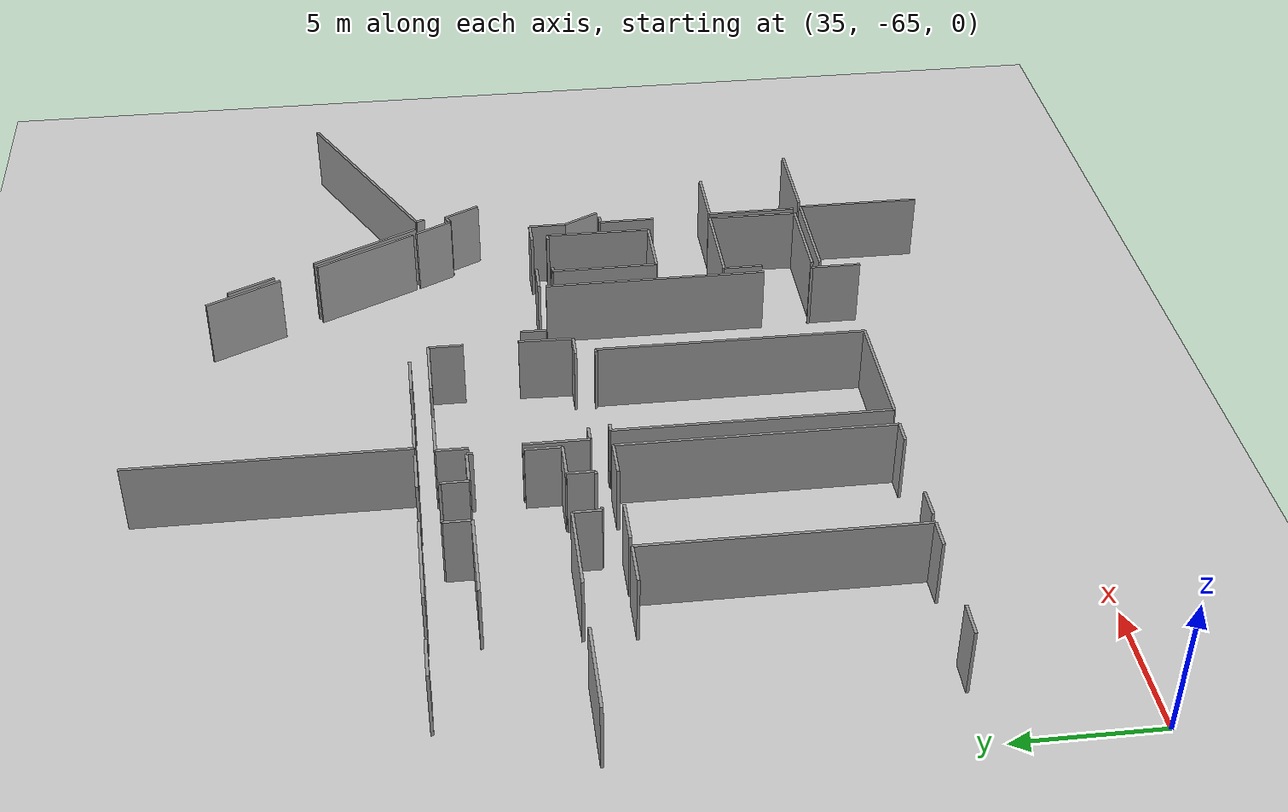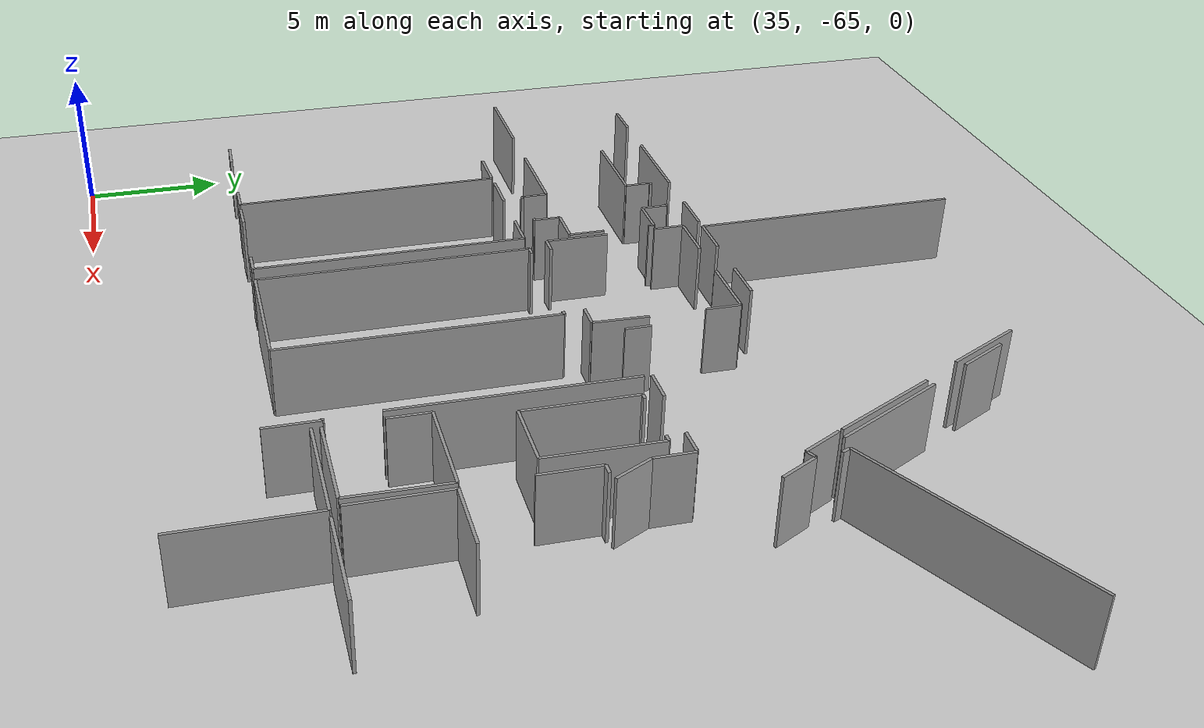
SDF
<sdf version="1.6">
 <world name="default">
  <model name="ground_plane">
   <static>1</static>
   <link name="link">
    <collision name="collision">
     <geometry><plane><normal>0 0 1</normal><size>100 100</size></plane></geometry>
     <surface><friction><ode><mu>100</mu><mu2>50</mu2></ode></friction></surface>
    </collision>
    <visual name="visual">
     <cast_shadows>0</cast_shadows>
     <geometry><plane><normal>0 0 1</normal><size>100 100</size></plane></geometry>
     <material>
      <script><uri>file://media/materials/scripts/gazebo.material</uri><name>Gazebo/Grey</name></script>
     </material>
    </visual>
   </link>
  </model>
  <model name="0510045922_A-40">
   <static>1</static>
   <link name="Wall_1541">
    <collision name="Wall_1541_Collision">
     <geometry><box><size>1.59140878185 0.1 2.5</size></box></geometry>
     <pose>0.795704390926 0 1.25 0 0 0</pose>
    </collision>
    <visual name="Wall_1541_Visual">
     <pose>0.795704390926 0 1.25 0 0 0</pose>
     <geometry><box><size>1.59140878185 0.1 2.5</size></box></geometry>
     <material>
      <script><uri>file://media/materials/scripts/gazebo.material</uri><name>Gazebo/Grey</name></script>
      <ambient>1 1 1 1</ambient>
     </material>
    </visual>
    <pose>174.724331194 -150.991523162 0 0 0 0.0</pose>
   </link>
   <link name="Wall_1542">
    <collision name="Wall_1542_Collision">
     <geometry><box><size>9.60462604054 0.1 2.5</size></box></geometry>
     <pose>4.80231302027 0 1.25 0 0 0</pose>
    </collision>
    <visual name="Wall_1542_Visual">
     <pose>4.80231302027 0 1.25 0 0 0</pose>
     <geometry><box><size>9.60462604054 0.1 2.5</size></box></geometry>
     <material>
      <script><uri>file://media/materials/scripts/gazebo.material</uri><name>Gazebo/Grey</name></script>
      <ambient>1 1 1 1</ambient>
     </material>
    </visual>
    <pose>176.315739976 -150.991523162 0 0 0 -1.57079632679</pose>
   </link>
   <link name="Wall_1543">
    <collision name="Wall_1543_Collision">
     <geometry><box><size>1.04823028531 0.1 2.5</size></box></geometry>
     <pose>0.524115142657 0 1.25 0 0 0</pose>
    </collision>
    <visual name="Wall_1543_Visual">
     <pose>0.524115142657 0 1.25 0 0 0</pose>
     <geometry><box><size>1.04823028531 0.1 2.5</size></box></geometry>
     <material>
      <script><uri>file://media/materials/scripts/gazebo.material</uri><name>Gazebo/Grey</name></script>
      <ambient>1 1 1 1</ambient>
     </material>
    </visual>
    <pose>176.315739976 -160.596149203 0 0 0 3.14159265359</pose>
   </link>
   <link name="Wall_1544">
    <collision name="Wall_1544_Collision">
     <geometry><box><size>1.21402220186 0.1 2.5</size></box></geometry>
     <pose>0.607011100928 0 1.25 0 0 0</pose>
    </collision>
    <visual name="Wall_1544_Visual">
     <pose>0.607011100928 0 1.25 0 0 0</pose>
     <geometry><box><size>1.21402220186 0.1 2.5</size></box></geometry>
     <material>
      <script><uri>file://media/materials/scripts/gazebo.material</uri><name>Gazebo/Grey</name></script>
      <ambient>1 1 1 1</ambient>
     </material>
    </visual>
    <pose>172.524420156 -160.596149203 0 0 0 3.11856007816</pose>
   </link>
   <link name="Wall_1546">
    <collision name="Wall_1546_Collision">
     <geometry><box><size>1.57387049628 0.1 2.5</size></box></geometry>
     <pose>0.786935248141 0 1.25 0 0 0</pose>
    </collision>
    <visual name="Wall_1546_Visual">
     <pose>0.786935248141 0 1.25 0 0 0</pose>
     <geometry><box><size>1.57387049628 0.1 2.5</size></box></geometry>
     <material>
      <script><uri>file://media/materials/scripts/gazebo.material</uri><name>Gazebo/Grey</name></script>
      <ambient>1 1 1 1</ambient>
     </material>
    </visual>
    <pose>176.722170681 -150.982372752 0 0 0 0.0</pose>
   </link>
   <link name="Wall_1547">
    <collision name="Wall_1547_Collision">
     <geometry><box><size>1.37993264282 0.1 2.5</size></box></geometry>
     <pose>0.689966321408 0 1.25 0 0 0</pose>
    </collision>
    <visual name="Wall_1547_Visual">
     <pose>0.689966321408 0 1.25 0 0 0</pose>
     <geometry><box><size>1.37993264282 0.1 2.5</size></box></geometry>
     <material>
      <script><uri>file://media/materials/scripts/gazebo.material</uri><name>Gazebo/Grey</name></script>
      <ambient>1 1 1 1</ambient>
     </material>
    </visual>
    <pose>179.964465908 -150.982372752 0 0 0 0.0</pose>
   </link>
   <link name="Wall_1548">
    <collision name="Wall_1548_Collision">
     <geometry><box><size>9.62241850416 0.1 2.5</size></box></geometry>
     <pose>4.81120925208 0 1.25 0 0 0</pose>
    </collision>
    <visual name="Wall_1548_Visual">
     <pose>4.81120925208 0 1.25 0 0 0</pose>
     <geometry><box><size>9.62241850416 0.1 2.5</size></box></geometry>
     <material>
      <script><uri>file://media/materials/scripts/gazebo.material</uri><name>Gazebo/Grey</name></script>
      <ambient>1 1 1 1</ambient>
     </material>
    </visual>
    <pose>181.344398551 -150.982372752 0 0 0 -1.57079632679</pose>
   </link>
   <link name="Wall_1549">
    <collision name="Wall_1549_Collision">
     <geometry><box><size>0.846158734193 0.1 2.5</size></box></geometry>
     <pose>0.423079367097 0 1.25 0 0 0</pose>
    </collision>
    <visual name="Wall_1549_Visual">
     <pose>0.423079367097 0 1.25 0 0 0</pose>
     <geometry><box><size>0.846158734193 0.1 2.5</size></box></geometry>
     <material>
      <script><uri>file://media/materials/scripts/gazebo.material</uri><name>Gazebo/Grey</name></script>
      <ambient>1 1 1 1</ambient>
     </material>
    </visual>
    <pose>181.344398551 -160.604791256 0 0 0 3.14159265359</pose>
   </link>
   <link name="Wall_1550">
    <collision name="Wall_1550_Collision">
     <geometry><box><size>1.07378720545 0.1 2.5</size></box></geometry>
     <pose>0.536893602723 0 1.25 0 0 0</pose>
    </collision>
    <visual name="Wall_1550_Visual">
     <pose>0.536893602723 0 1.25 0 0 0</pose>
     <geometry><box><size>1.07378720545 0.1 2.5</size></box></geometry>
     <material>
      <script><uri>file://media/materials/scripts/gazebo.material</uri><name>Gazebo/Grey</name></script>
      <ambient>1 1 1 1</ambient>
     </material>
    </visual>
    <pose>177.795818771 -160.604791256 0 0 0 -3.12549555923</pose>
   </link>
   <link name="Wall_1556">
    <collision name="Wall_1556_Collision">
     <geometry><box><size>1.64681959713 0.1 2.5</size></box></geometry>
     <pose>0.823409798564 0 1.25 0 0 0</pose>
    </collision>
    <visual name="Wall_1556_Visual">
     <pose>0.823409798564 0 1.25 0 0 0</pose>
     <geometry><box><size>1.64681959713 0.1 2.5</size></box></geometry>
     <material>
      <script><uri>file://media/materials/scripts/gazebo.material</uri><name>Gazebo/Grey</name></script>
      <ambient>1 1 1 1</ambient>
     </material>
    </visual>
    <pose>181.570871195 -144.469822711 0 0 0 3.14159265359</pose>
   </link>
   <link name="Wall_1557">
    <collision name="Wall_1557_Collision">
     <geometry><box><size>3.50969053822 0.1 2.5</size></box></geometry>
     <pose>1.75484526911 0 1.25 0 0 0</pose>
    </collision>
    <visual name="Wall_1557_Visual">
     <pose>1.75484526911 0 1.25 0 0 0</pose>
     <geometry><box><size>3.50969053822 0.1 2.5</size></box></geometry>
     <material>
      <script><uri>file://media/materials/scripts/gazebo.material</uri><name>Gazebo/Grey</name></script>
      <ambient>1 1 1 1</ambient>
     </material>
    </visual>
    <pose>178.248255703 -144.469822711 0 0 0 3.14159265359</pose>
   </link>
   <link name="Wall_1558">
    <collision name="Wall_1558_Collision">
     <geometry><box><size>1.48719945147 0.1 2.5</size></box></geometry>
     <pose>0.743599725737 0 1.25 0 0 0</pose>
    </collision>
    <visual name="Wall_1558_Visual">
     <pose>0.743599725737 0 1.25 0 0 0</pose>
     <geometry><box><size>1.48719945147 0.1 2.5</size></box></geometry>
     <material>
      <script><uri>file://media/materials/scripts/gazebo.material</uri><name>Gazebo/Grey</name></script>
      <ambient>1 1 1 1</ambient>
     </material>
    </visual>
    <pose>172.945847366 -144.469822711 0 0 0 -3.13937081483</pose>
   </link>
   <link name="Wall_1635">
    <collision name="Wall_1635_Collision">
     <geometry><box><size>3.24966639131 0.1 2.5</size></box></geometry>
     <pose>1.62483319565 0 1.25 0 0 0</pose>
    </collision>
    <visual name="Wall_1635_Visual">
     <pose>1.62483319565 0 1.25 0 0 0</pose>
     <geometry><box><size>3.24966639131 0.1 2.5</size></box></geometry>
     <material>
      <script><uri>file://media/materials/scripts/gazebo.material</uri><name>Gazebo/Grey</name></script>
      <ambient>1 1 1 1</ambient>
     </material>
    </visual>
    <pose>174.873279532 -146.15807333 0 0 0 0.0</pose>
   </link>
   <link name="Wall_1636">
    <collision name="Wall_1636_Collision">
     <geometry><box><size>0.954184406177 0.1 2.5</size></box></geometry>
     <pose>0.477092203088 0 1.25 0 0 0</pose>
    </collision>
    <visual name="Wall_1636_Visual">
     <pose>0.477092203088 0 1.25 0 0 0</pose>
     <geometry><box><size>0.954184406177 0.1 2.5</size></box></geometry>
     <material>
      <script><uri>file://media/materials/scripts/gazebo.material</uri><name>Gazebo/Grey</name></script>
      <ambient>1 1 1 1</ambient>
     </material>
    </visual>
    <pose>178.122945924 -146.15807333 0 0 0 1.57079632679</pose>
   </link>
   <link name="Wall_1637">
    <collision name="Wall_1637_Collision">
     <geometry><box><size>0.106500603673 0.1 2.5</size></box></geometry>
     <pose>0.0532503018364 0 1.25 0 0 0</pose>
    </collision>
    <visual name="Wall_1637_Visual">
     <pose>0.0532503018364 0 1.25 0 0 0</pose>
     <geometry><box><size>0.106500603673 0.1 2.5</size></box></geometry>
     <material>
      <script><uri>file://media/materials/scripts/gazebo.material</uri><name>Gazebo/Grey</name></script>
      <ambient>1 1 1 1</ambient>
     </material>
    </visual>
    <pose>178.122945924 -145.203888924 0 0 0 0.0</pose>
   </link>
   <link name="Wall_1638">
    <collision name="Wall_1638_Collision">
     <geometry><box><size>0.106754781725 0.1 2.5</size></box></geometry>
     <pose>0.0533773908623 0 1.25 0 0 0</pose>
    </collision>
    <visual name="Wall_1638_Visual">
     <pose>0.0533773908623 0 1.25 0 0 0</pose>
     <geometry><box><size>0.106754781725 0.1 2.5</size></box></geometry>
     <material>
      <script><uri>file://media/materials/scripts/gazebo.material</uri><name>Gazebo/Grey</name></script>
      <ambient>1 1 1 1</ambient>
     </material>
    </visual>
    <pose>179.951502828 -145.203888924 0 0 0 0.0</pose>
   </link>
   <link name="Wall_1639">
    <collision name="Wall_1639_Collision">
     <geometry><box><size>0.950117557349 0.1 2.5</size></box></geometry>
     <pose>0.475058778674 0 1.25 0 0 0</pose>
    </collision>
    <visual name="Wall_1639_Visual">
     <pose>0.475058778674 0 1.25 0 0 0</pose>
     <geometry><box><size>0.950117557349 0.1 2.5</size></box></geometry>
     <material>
      <script><uri>file://media/materials/scripts/gazebo.material</uri><name>Gazebo/Grey</name></script>
      <ambient>1 1 1 1</ambient>
     </material>
    </visual>
    <pose>180.058257609 -145.203888924 0 0 0 -1.57079632679</pose>
   </link>
   <link name="Wall_1640">
    <collision name="Wall_1640_Collision">
     <geometry><box><size>1.39696257228 0.1 2.5</size></box></geometry>
     <pose>0.698481286141 0 1.25 0 0 0</pose>
    </collision>
    <visual name="Wall_1640_Visual">
     <pose>0.698481286141 0 1.25 0 0 0</pose>
     <geometry><box><size>1.39696257228 0.1 2.5</size></box></geometry>
     <material>
      <script><uri>file://media/materials/scripts/gazebo.material</uri><name>Gazebo/Grey</name></script>
      <ambient>1 1 1 1</ambient>
     </material>
    </visual>
    <pose>180.058257609 -146.154006482 0 0 0 0.0</pose>
   </link>
   <link name="Wall_1641">
    <collision name="Wall_1641_Collision">
     <geometry><box><size>0.209442714622 0.1 2.5</size></box></geometry>
     <pose>0.104721357311 0 1.25 0 0 0</pose>
    </collision>
    <visual name="Wall_1641_Visual">
     <pose>0.104721357311 0 1.25 0 0 0</pose>
     <geometry><box><size>0.209442714622 0.1 2.5</size></box></geometry>
     <material>
      <script><uri>file://media/materials/scripts/gazebo.material</uri><name>Gazebo/Grey</name></script>
      <ambient>1 1 1 1</ambient>
     </material>
    </visual>
    <pose>181.455220182 -146.154006482 0 0 0 -1.57079632679</pose>
   </link>
   <link name="Wall_1642">
    <collision name="Wall_1642_Collision">
     <geometry><box><size>1.26911101226 0.1 2.5</size></box></geometry>
     <pose>0.634555506132 0 1.25 0 0 0</pose>
    </collision>
    <visual name="Wall_1642_Visual">
     <pose>0.634555506132 0 1.25 0 0 0</pose>
     <geometry><box><size>1.26911101226 0.1 2.5</size></box></geometry>
     <material>
      <script><uri>file://media/materials/scripts/gazebo.material</uri><name>Gazebo/Grey</name></script>
      <ambient>1 1 1 1</ambient>
     </material>
    </visual>
    <pose>181.455220182 -148.043820296 0 0 0 -1.57079632679</pose>
   </link>
   <link name="Wall_1643">
    <collision name="Wall_1643_Collision">
     <geometry><box><size>1.38450784775 0.1 2.5</size></box></geometry>
     <pose>0.692253923874 0 1.25 0 0 0</pose>
    </collision>
    <visual name="Wall_1643_Visual">
     <pose>0.692253923874 0 1.25 0 0 0</pose>
     <geometry><box><size>1.38450784775 0.1 2.5</size></box></geometry>
     <material>
      <script><uri>file://media/materials/scripts/gazebo.material</uri><name>Gazebo/Grey</name></script>
      <ambient>1 1 1 1</ambient>
     </material>
    </visual>
    <pose>181.455220182 -149.312931308 0 0 0 3.14159265359</pose>
   </link>
   <link name="Wall_1644">
    <collision name="Wall_1644_Collision">
     <geometry><box><size>0.948084132935 0.1 2.5</size></box></geometry>
     <pose>0.474042066468 0 1.25 0 0 0</pose>
    </collision>
    <visual name="Wall_1644_Visual">
     <pose>0.474042066468 0 1.25 0 0 0</pose>
     <geometry><box><size>0.948084132935 0.1 2.5</size></box></geometry>
     <material>
      <script><uri>file://media/materials/scripts/gazebo.material</uri><name>Gazebo/Grey</name></script>
      <ambient>1 1 1 1</ambient>
     </material>
    </visual>
    <pose>180.070712334 -149.312931308 0 0 0 -1.57079632679</pose>
   </link>
   <link name="Wall_1645">
    <collision name="Wall_1645_Collision">
     <geometry><box><size>0.130139162483 0.1 2.5</size></box></geometry>
     <pose>0.0650695812417 0 1.25 0 0 0</pose>
    </collision>
    <visual name="Wall_1645_Visual">
     <pose>0.0650695812417 0 1.25 0 0 0</pose>
     <geometry><box><size>0.130139162483 0.1 2.5</size></box></geometry>
     <material>
      <script><uri>file://media/materials/scripts/gazebo.material</uri><name>Gazebo/Grey</name></script>
      <ambient>1 1 1 1</ambient>
     </material>
    </visual>
    <pose>180.070712334 -150.261015441 0 0 0 3.14159265359</pose>
   </link>
   <link name="Wall_1646">
    <collision name="Wall_1646_Collision">
     <geometry><box><size>0.134460189363 0.1 2.5</size></box></geometry>
     <pose>0.0672300946813 0 1.25 0 0 0</pose>
    </collision>
    <visual name="Wall_1646_Visual">
     <pose>0.0672300946813 0 1.25 0 0 0</pose>
     <geometry><box><size>0.134460189363 0.1 2.5</size></box></geometry>
     <material>
      <script><uri>file://media/materials/scripts/gazebo.material</uri><name>Gazebo/Grey</name></script>
      <ambient>1 1 1 1</ambient>
     </material>
    </visual>
    <pose>178.265031455 -150.261015441 0 0 0 3.14159265359</pose>
   </link>
   <link name="Wall_1647">
    <collision name="Wall_1647_Collision">
     <geometry><box><size>0.959267967211 0.1 2.5</size></box></geometry>
     <pose>0.479633983606 0 1.25 0 0 0</pose>
    </collision>
    <visual name="Wall_1647_Visual">
     <pose>0.479633983606 0 1.25 0 0 0</pose>
     <geometry><box><size>0.959267967211 0.1 2.5</size></box></geometry>
     <material>
      <script><uri>file://media/materials/scripts/gazebo.material</uri><name>Gazebo/Grey</name></script>
      <ambient>1 1 1 1</ambient>
     </material>
    </visual>
    <pose>178.130571265 -150.261015441 0 0 0 1.57079632679</pose>
   </link>
   <link name="Wall_1648">
    <collision name="Wall_1648_Collision">
     <geometry><box><size>3.28728474296 0.1 2.5</size></box></geometry>
     <pose>1.64364237148 0 1.25 0 0 0</pose>
    </collision>
    <visual name="Wall_1648_Visual">
     <pose>1.64364237148 0 1.25 0 0 0</pose>
     <geometry><box><size>3.28728474296 0.1 2.5</size></box></geometry>
     <material>
      <script><uri>file://media/materials/scripts/gazebo.material</uri><name>Gazebo/Grey</name></script>
      <ambient>1 1 1 1</ambient>
     </material>
    </visual>
    <pose>178.130571265 -149.301747474 0 0 0 3.14159265359</pose>
   </link>
   <link name="Wall_1649">
    <collision name="Wall_1649_Collision">
     <geometry><box><size>3.26593378662 0.1 2.5</size></box></geometry>
     <pose>1.63296689331 0 1.25 0 0 0</pose>
    </collision>
    <visual name="Wall_1649_Visual">
     <pose>1.63296689331 0 1.25 0 0 0</pose>
     <geometry><box><size>3.26593378662 0.1 2.5</size></box></geometry>
     <material>
      <script><uri>file://media/materials/scripts/gazebo.material</uri><name>Gazebo/Grey</name></script>
      <ambient>1 1 1 1</ambient>
     </material>
    </visual>
    <pose>172.89704518 -149.301747474 0 0 0 3.14159265359</pose>
   </link>
   <link name="Wall_1854">
    <collision name="Wall_1854_Collision">
     <geometry><box><size>0.88250619559 0.1 2.5</size></box></geometry>
     <pose>0.441253097795 0 1.25 0 0 0</pose>
    </collision>
    <visual name="Wall_1854_Visual">
     <pose>0.441253097795 0 1.25 0 0 0</pose>
     <geometry><box><size>0.88250619559 0.1 2.5</size></box></geometry>
     <material>
      <script><uri>file://media/materials/scripts/gazebo.material</uri><name>Gazebo/Grey</name></script>
      <ambient>1 1 1 1</ambient>
     </material>
    </visual>
    <pose>187.482544322 -150.257202771 0 0 0 3.14159265359</pose>
   </link>
   <link name="Wall_1855">
    <collision name="Wall_1855_Collision">
     <geometry><box><size>0.63493677321 0.1 2.5</size></box></geometry>
     <pose>0.317468386605 0 1.25 0 0 0</pose>
    </collision>
    <visual name="Wall_1855_Visual">
     <pose>0.317468386605 0 1.25 0 0 0</pose>
     <geometry><box><size>0.63493677321 0.1 2.5</size></box></geometry>
     <material>
      <script><uri>file://media/materials/scripts/gazebo.material</uri><name>Gazebo/Grey</name></script>
      <ambient>1 1 1 1</ambient>
     </material>
    </visual>
    <pose>182.374328017 -150.257202771 0 0 0 3.14159265359</pose>
   </link>
   <link name="Wall_1856">
    <collision name="Wall_1856_Collision">
     <geometry><box><size>2.25684692127 0.1 2.5</size></box></geometry>
     <pose>1.12842346063 0 1.25 0 0 0</pose>
    </collision>
    <visual name="Wall_1856_Visual">
     <pose>1.12842346063 0 1.25 0 0 0</pose>
     <geometry><box><size>2.25684692127 0.1 2.5</size></box></geometry>
     <material>
      <script><uri>file://media/materials/scripts/gazebo.material</uri><name>Gazebo/Grey</name></script>
      <ambient>1 1 1 1</ambient>
     </material>
    </visual>
    <pose>181.739391244 -150.257202771 0 0 0 1.57079632679</pose>
   </link>
   <link name="Wall_1857">
    <collision name="Wall_1857_Collision">
     <geometry><box><size>1.0972866493 0.1 2.5</size></box></geometry>
     <pose>0.548643324649 0 1.25 0 0 0</pose>
    </collision>
    <visual name="Wall_1857_Visual">
     <pose>0.548643324649 0 1.25 0 0 0</pose>
     <geometry><box><size>1.0972866493 0.1 2.5</size></box></geometry>
     <material>
      <script><uri>file://media/materials/scripts/gazebo.material</uri><name>Gazebo/Grey</name></script>
      <ambient>1 1 1 1</ambient>
     </material>
    </visual>
    <pose>181.739391244 -146.239664485 0 0 0 1.57079632679</pose>
   </link>
   <link name="Wall_1858">
    <collision name="Wall_1858_Collision">
     <geometry><box><size>1.77136684247 0.1 2.5</size></box></geometry>
     <pose>0.885683421237 0 1.25 0 0 0</pose>
    </collision>
    <visual name="Wall_1858_Visual">
     <pose>0.885683421237 0 1.25 0 0 0</pose>
     <geometry><box><size>1.77136684247 0.1 2.5</size></box></geometry>
     <material>
      <script><uri>file://media/materials/scripts/gazebo.material</uri><name>Gazebo/Grey</name></script>
      <ambient>1 1 1 1</ambient>
     </material>
    </visual>
    <pose>181.739391244 -145.142377836 0 0 0 0.0</pose>
   </link>
   <link name="Wall_1859">
    <collision name="Wall_1859_Collision">
     <geometry><box><size>2.39562813751 0.1 2.5</size></box></geometry>
     <pose>1.19781406876 0 1.25 0 0 0</pose>
    </collision>
    <visual name="Wall_1859_Visual">
     <pose>1.19781406876 0 1.25 0 0 0</pose>
     <geometry><box><size>2.39562813751 0.1 2.5</size></box></geometry>
     <material>
      <script><uri>file://media/materials/scripts/gazebo.material</uri><name>Gazebo/Grey</name></script>
      <ambient>1 1 1 1</ambient>
     </material>
    </visual>
    <pose>185.138514329 -145.142377836 0 0 0 0.0</pose>
   </link>
   <link name="Wall_1860">
    <collision name="Wall_1860_Collision">
     <geometry><box><size>1.22920505814 0.1 2.5</size></box></geometry>
     <pose>0.614602529072 0 1.25 0 0 0</pose>
    </collision>
    <visual name="Wall_1860_Visual">
     <pose>0.614602529072 0 1.25 0 0 0</pose>
     <geometry><box><size>1.22920505814 0.1 2.5</size></box></geometry>
     <material>
      <script><uri>file://media/materials/scripts/gazebo.material</uri><name>Gazebo/Grey</name></script>
      <ambient>1 1 1 1</ambient>
     </material>
    </visual>
    <pose>187.534142467 -145.142377836 0 0 0 -1.57079632679</pose>
   </link>
   <link name="Wall_1861">
    <collision name="Wall_1861_Collision">
     <geometry><box><size>1.94006481057 0.1 2.5</size></box></geometry>
     <pose>0.970032405287 0 1.25 0 0 0</pose>
    </collision>
    <visual name="Wall_1861_Visual">
     <pose>0.970032405287 0 1.25 0 0 0</pose>
     <geometry><box><size>1.94006481057 0.1 2.5</size></box></geometry>
     <material>
      <script><uri>file://media/materials/scripts/gazebo.material</uri><name>Gazebo/Grey</name></script>
      <ambient>1 1 1 1</ambient>
     </material>
    </visual>
    <pose>187.534142467 -148.317824236 0 0 0 -1.59739555645</pose>
   </link>
   <link name="Wall_1862">
    <collision name="Wall_1862_Collision">
     <geometry><box><size>9.62419775052 0.1 2.5</size></box></geometry>
     <pose>4.81209887526 0 1.25 0 0 0</pose>
    </collision>
    <visual name="Wall_1862_Visual">
     <pose>4.81209887526 0 1.25 0 0 0</pose>
     <geometry><box><size>9.62419775052 0.1 2.5</size></box></geometry>
     <material>
      <script><uri>file://media/materials/scripts/gazebo.material</uri><name>Gazebo/Grey</name></script>
      <ambient>1 1 1 1</ambient>
     </material>
    </visual>
    <pose>182.134383936 -160.611908242 0 0 0 1.57079632679</pose>
   </link>
   <link name="Wall_1863">
    <collision name="Wall_1863_Collision">
     <geometry><box><size>0.339581877105 0.1 2.5</size></box></geometry>
     <pose>0.169790938552 0 1.25 0 0 0</pose>
    </collision>
    <visual name="Wall_1863_Visual">
     <pose>0.169790938552 0 1.25 0 0 0</pose>
     <geometry><box><size>0.339581877105 0.1 2.5</size></box></geometry>
     <material>
      <script><uri>file://media/materials/scripts/gazebo.material</uri><name>Gazebo/Grey</name></script>
      <ambient>1 1 1 1</ambient>
     </material>
    </visual>
    <pose>182.134383936 -150.987710491 0 0 0 0.0</pose>
   </link>
   <link name="Wall_1864">
    <collision name="Wall_1864_Collision">
     <geometry><box><size>0.161403062846 0.1 2.5</size></box></geometry>
     <pose>0.0807015314228 0 1.25 0 0 0</pose>
    </collision>
    <visual name="Wall_1864_Visual">
     <pose>0.0807015314228 0 1.25 0 0 0</pose>
     <geometry><box><size>0.161403062846 0.1 2.5</size></box></geometry>
     <material>
      <script><uri>file://media/materials/scripts/gazebo.material</uri><name>Gazebo/Grey</name></script>
      <ambient>1 1 1 1</ambient>
     </material>
    </visual>
    <pose>186.584024909 -150.987710491 0 0 0 0.0</pose>
   </link>
   <link name="Wall_1865">
    <collision name="Wall_1865_Collision">
     <geometry><box><size>9.61225138209 0.1 2.5</size></box></geometry>
     <pose>4.80612569105 0 1.25 0 0 0</pose>
    </collision>
    <visual name="Wall_1865_Visual">
     <pose>4.80612569105 0 1.25 0 0 0</pose>
     <geometry><box><size>9.61225138209 0.1 2.5</size></box></geometry>
     <material>
      <script><uri>file://media/materials/scripts/gazebo.material</uri><name>Gazebo/Grey</name></script>
      <ambient>1 1 1 1</ambient>
     </material>
    </visual>
    <pose>186.745427972 -150.987710491 0 0 0 -1.57079632679</pose>
   </link>
   <link name="Wall_1866">
    <collision name="Wall_1866_Collision">
     <geometry><box><size>4.61105951175 0.1 2.5</size></box></geometry>
     <pose>2.30552975587 0 1.25 0 0 0</pose>
    </collision>
    <visual name="Wall_1866_Visual">
     <pose>2.30552975587 0 1.25 0 0 0</pose>
     <geometry><box><size>4.61105951175 0.1 2.5</size></box></geometry>
     <material>
      <script><uri>file://media/materials/scripts/gazebo.material</uri><name>Gazebo/Grey</name></script>
      <ambient>1 1 1 1</ambient>
     </material>
    </visual>
    <pose>186.745427972 -160.599961873 0 0 0 -3.139001843</pose>
   </link>
   <link name="Wall_1867">
    <collision name="Wall_1867_Collision">
     <geometry><box><size>9.59471309652 0.1 2.5</size></box></geometry>
     <pose>4.79735654826 0 1.25 0 0 0</pose>
    </collision>
    <visual name="Wall_1867_Visual">
     <pose>4.79735654826 0 1.25 0 0 0</pose>
     <geometry><box><size>9.59471309652 0.1 2.5</size></box></geometry>
     <material>
      <script><uri>file://media/materials/scripts/gazebo.material</uri><name>Gazebo/Grey</name></script>
      <ambient>1 1 1 1</ambient>
     </material>
    </visual>
    <pose>181.946546356 -144.463214081 0 0 0 1.57079632679</pose>
   </link>
   <link name="Wall_1871">
    <collision name="Wall_1871_Collision">
     <geometry><box><size>1.60437186249 0.1 2.5</size></box></geometry>
     <pose>0.802185931245 0 1.25 0 0 0</pose>
    </collision>
    <visual name="Wall_1871_Visual">
     <pose>0.802185931245 0 1.25 0 0 0</pose>
     <geometry><box><size>1.60437186249 0.1 2.5</size></box></geometry>
     <material>
      <script><uri>file://media/materials/scripts/gazebo.material</uri><name>Gazebo/Grey</name></script>
      <ambient>1 1 1 1</ambient>
     </material>
    </visual>
    <pose>186.758899409 -144.470331067 0 0 0 3.14159265359</pose>
   </link>
   <link name="Wall_1872">
    <collision name="Wall_1872_Collision">
     <geometry><box><size>1.54846904654 0.1 2.5</size></box></geometry>
     <pose>0.774234523269 0 1.25 0 0 0</pose>
    </collision>
    <visual name="Wall_1872_Visual">
     <pose>0.774234523269 0 1.25 0 0 0</pose>
     <geometry><box><size>1.54846904654 0.1 2.5</size></box></geometry>
     <material>
      <script><uri>file://media/materials/scripts/gazebo.material</uri><name>Gazebo/Grey</name></script>
      <ambient>1 1 1 1</ambient>
     </material>
    </visual>
    <pose>183.494999047 -144.470331067 0 0 0 3.13699649423</pose>
   </link>
   <link name="Wall_1873">
    <collision name="Wall_1873_Collision">
     <geometry><box><size>4.02944081835 0.1 2.5</size></box></geometry>
     <pose>2.01472040917 0 1.25 0 0 0</pose>
    </collision>
    <visual name="Wall_1873_Visual">
     <pose>2.01472040917 0 1.25 0 0 0</pose>
     <geometry><box><size>4.02944081835 0.1 2.5</size></box></geometry>
     <material>
      <script><uri>file://media/materials/scripts/gazebo.material</uri><name>Gazebo/Grey</name></script>
      <ambient>1 1 1 1</ambient>
     </material>
    </visual>
    <pose>194.923352609 -144.865577937 0 0 0 2.03447214613</pose>
   </link>
   <link name="Wall_1874">
    <collision name="Wall_1874_Collision">
     <geometry><box><size>2.93864545454 0.1 2.5</size></box></geometry>
     <pose>1.46932272727 0 1.25 0 0 0</pose>
    </collision>
    <visual name="Wall_1874_Visual">
     <pose>1.46932272727 0 1.25 0 0 0</pose>
     <geometry><box><size>2.93864545454 0.1 2.5</size></box></geometry>
     <material>
      <script><uri>file://media/materials/scripts/gazebo.material</uri><name>Gazebo/Grey</name></script>
      <ambient>1 1 1 1</ambient>
     </material>
    </visual>
    <pose>192.366829764 -139.899192985 0 0 0 2.03440525407</pose>
   </link>
   <link name="Wall_1878">
    <collision name="Wall_1878_Collision">
     <geometry><box><size>0.906907288556 0.1 2.5</size></box></geometry>
     <pose>0.453453644278 0 1.25 0 0 0</pose>
    </collision>
    <visual name="Wall_1878_Visual">
     <pose>0.453453644278 0 1.25 0 0 0</pose>
     <geometry><box><size>0.906907288556 0.1 2.5</size></box></geometry>
     <material>
      <script><uri>file://media/materials/scripts/gazebo.material</uri><name>Gazebo/Grey</name></script>
      <ambient>1 1 1 1</ambient>
     </material>
    </visual>
    <pose>188.108076508 -148.43474614 0 0 0 -1.57079632679</pose>
   </link>
   <link name="Wall_1879">
    <collision name="Wall_1879_Collision">
     <geometry><box><size>1.15320582068 0.1 2.5</size></box></geometry>
     <pose>0.576602910339 0 1.25 0 0 0</pose>
    </collision>
    <visual name="Wall_1879_Visual">
     <pose>0.576602910339 0 1.25 0 0 0</pose>
     <geometry><box><size>1.15320582068 0.1 2.5</size></box></geometry>
     <material>
      <script><uri>file://media/materials/scripts/gazebo.material</uri><name>Gazebo/Grey</name></script>
      <ambient>1 1 1 1</ambient>
     </material>
    </visual>
    <pose>190.907847747 -149.341653428 0 0 0 0.0</pose>
   </link>
   <link name="Wall_1880">
    <collision name="Wall_1880_Collision">
     <geometry><box><size>0.910835194085 0.1 2.5</size></box></geometry>
     <pose>0.455417597043 0 1.25 0 0 0</pose>
    </collision>
    <visual name="Wall_1880_Visual">
     <pose>0.455417597043 0 1.25 0 0 0</pose>
     <geometry><box><size>0.910835194085 0.1 2.5</size></box></geometry>
     <material>
      <script><uri>file://media/materials/scripts/gazebo.material</uri><name>Gazebo/Grey</name></script>
      <ambient>1 1 1 1</ambient>
     </material>
    </visual>
    <pose>194.012632649 -149.341653428 0 0 0 0.0159071147724</pose>
   </link>
   <link name="Wall_1884">
    <collision name="Wall_1884_Collision">
     <geometry><box><size>8.11870115016 0.1 2.5</size></box></geometry>
     <pose>4.05935057508 0 1.25 0 0 0</pose>
    </collision>
    <visual name="Wall_1884_Visual">
     <pose>4.05935057508 0 1.25 0 0 0</pose>
     <geometry><box><size>8.11870115016 0.1 2.5</size></box></geometry>
     <material>
      <script><uri>file://media/materials/scripts/gazebo.material</uri><name>Gazebo/Grey</name></script>
      <ambient>1 1 1 1</ambient>
     </material>
    </visual>
    <pose>190.881159052 -149.591764631 0 0 0 -1.57079632679</pose>
   </link>
   <link name="Wall_1885">
    <collision name="Wall_1885_Collision">
     <geometry><box><size>0.0813369765521 0.1 2.5</size></box></geometry>
     <pose>0.0406684882761 0 1.25 0 0 0</pose>
    </collision>
    <visual name="Wall_1885_Visual">
     <pose>0.0406684882761 0 1.25 0 0 0</pose>
     <geometry><box><size>0.0813369765521 0.1 2.5</size></box></geometry>
     <material>
      <script><uri>file://media/materials/scripts/gazebo.material</uri><name>Gazebo/Grey</name></script>
      <ambient>1 1 1 1</ambient>
     </material>
    </visual>
    <pose>190.881159052 -159.50318358 0 0 0 0.0</pose>
   </link>
   <link name="Wall_1886">
    <collision name="Wall_1886_Collision">
     <geometry><box><size>1.83516553346 0.1 2.5</size></box></geometry>
     <pose>0.917582766728 0 1.25 0 0 0</pose>
    </collision>
    <visual name="Wall_1886_Visual">
     <pose>0.917582766728 0 1.25 0 0 0</pose>
     <geometry><box><size>1.83516553346 0.1 2.5</size></box></geometry>
     <material>
      <script><uri>file://media/materials/scripts/gazebo.material</uri><name>Gazebo/Grey</name></script>
      <ambient>1 1 1 1</ambient>
     </material>
    </visual>
    <pose>190.962496028 -159.50318358 0 0 0 -1.57079632679</pose>
   </link>
   <link name="Wall_1897">
    <collision name="Wall_1897_Collision">
     <geometry><box><size>1.43621674663 0.1 2.5</size></box></geometry>
     <pose>0.718108373313 0 1.25 0 0 0</pose>
    </collision>
    <visual name="Wall_1897_Visual">
     <pose>0.718108373313 0 1.25 0 0 0</pose>
     <geometry><box><size>1.43621674663 0.1 2.5</size></box></geometry>
     <material>
      <script><uri>file://media/materials/scripts/gazebo.material</uri><name>Gazebo/Grey</name></script>
      <ambient>1 1 1 1</ambient>
     </material>
    </visual>
    <pose>195.652843617 -151.961720785 0 0 0 2.05534019714</pose>
   </link>
   <link name="Wall_1898">
    <collision name="Wall_1898_Collision">
     <geometry><box><size>1.35222723518 0.1 2.5</size></box></geometry>
     <pose>0.676113617589 0 1.25 0 0 0</pose>
    </collision>
    <visual name="Wall_1898_Visual">
     <pose>0.676113617589 0 1.25 0 0 0</pose>
     <geometry><box><size>1.35222723518 0.1 2.5</size></box></geometry>
     <material>
      <script><uri>file://media/materials/scripts/gazebo.material</uri><name>Gazebo/Grey</name></script>
      <ambient>1 1 1 1</ambient>
     </material>
    </visual>
    <pose>194.983846985 -150.690830527 0 0 0 1.57079632679</pose>
   </link>
   <link name="Wall_1899">
    <collision name="Wall_1899_Collision">
     <geometry><box><size>1.49407047962 0.1 2.5</size></box></geometry>
     <pose>0.747035239809 0 1.25 0 0 0</pose>
    </collision>
    <visual name="Wall_1899_Visual">
     <pose>0.747035239809 0 1.25 0 0 0</pose>
     <geometry><box><size>1.49407047962 0.1 2.5</size></box></geometry>
     <material>
      <script><uri>file://media/materials/scripts/gazebo.material</uri><name>Gazebo/Grey</name></script>
      <ambient>1 1 1 1</ambient>
     </material>
    </visual>
    <pose>194.983846985 -144.996479634 0 0 0 -1.08683342461</pose>
   </link>
   <link name="Wall_1900">
    <collision name="Wall_1900_Collision">
     <geometry><box><size>0.3663651054 0.1 2.5</size></box></geometry>
     <pose>0.1831825527 0 1.25 0 0 0</pose>
    </collision>
    <visual name="Wall_1900_Visual">
     <pose>0.1831825527 0 1.25 0 0 0</pose>
     <geometry><box><size>0.3663651054 0.1 2.5</size></box></geometry>
     <material>
      <script><uri>file://media/materials/scripts/gazebo.material</uri><name>Gazebo/Grey</name></script>
      <ambient>1 1 1 1</ambient>
     </material>
    </visual>
    <pose>195.679023956 -146.318968037 0 0 0 0.465509226459</pose>
   </link>
   <link name="Wall_1901">
    <collision name="Wall_1901_Collision">
     <geometry><box><size>1.44152144829 0.1 2.5</size></box></geometry>
     <pose>0.720760724145 0 1.25 0 0 0</pose>
    </collision>
    <visual name="Wall_1901_Visual">
     <pose>0.720760724145 0 1.25 0 0 0</pose>
     <geometry><box><size>1.44152144829 0.1 2.5</size></box></geometry>
     <material>
      <script><uri>file://media/materials/scripts/gazebo.material</uri><name>Gazebo/Grey</name></script>
      <ambient>1 1 1 1</ambient>
     </material>
    </visual>
    <pose>196.006405287 -146.154514838 0 0 0 -1.08759130949</pose>
   </link>
   <link name="Wall_1940">
    <collision name="Wall_1940_Collision">
     <geometry><box><size>4.31564650507 0.1 2.5</size></box></geometry>
     <pose>2.15782325253 0 1.25 0 0 0</pose>
    </collision>
    <visual name="Wall_1940_Visual">
     <pose>2.15782325253 0 1.25 0 0 0</pose>
     <geometry><box><size>4.31564650507 0.1 2.5</size></box></geometry>
     <material>
      <script><uri>file://media/materials/scripts/gazebo.material</uri><name>Gazebo/Grey</name></script>
      <ambient>1 1 1 1</ambient>
     </material>
    </visual>
    <pose>195.309194891 -144.977924636 0 0 0 2.04102885313</pose>
   </link>
   <link name="Wall_1941">
    <collision name="Wall_1941_Collision">
     <geometry><box><size>1.87173239741 0.1 2.5</size></box></geometry>
     <pose>0.935866198703 0 1.25 0 0 0</pose>
    </collision>
    <visual name="Wall_1941_Visual">
     <pose>0.935866198703 0 1.25 0 0 0</pose>
     <geometry><box><size>1.87173239741 0.1 2.5</size></box></geometry>
     <material>
      <script><uri>file://media/materials/scripts/gazebo.material</uri><name>Gazebo/Grey</name></script>
      <ambient>1 1 1 1</ambient>
     </material>
    </visual>
    <pose>192.583643642 -139.692037873 0 0 0 2.03790560058</pose>
   </link>
   <link name="Wall_1955">
    <collision name="Wall_1955_Collision">
     <geometry><box><size>0.324637218643 0.1 2.5</size></box></geometry>
     <pose>0.162318609321 0 1.25 0 0 0</pose>
    </collision>
    <visual name="Wall_1955_Visual">
     <pose>0.162318609321 0 1.25 0 0 0</pose>
     <geometry><box><size>0.324637218643 0.1 2.5</size></box></geometry>
     <material>
      <script><uri>file://media/materials/scripts/gazebo.material</uri><name>Gazebo/Grey</name></script>
      <ambient>1 1 1 1</ambient>
     </material>
    </visual>
    <pose>195.962432484 -145.327673635 0 0 0 1.9892591491</pose>
   </link>
   <link name="Wall_1956">
    <collision name="Wall_1956_Collision">
     <geometry><box><size>8.26783740633 0.1 2.5</size></box></geometry>
     <pose>4.13391870316 0 1.25 0 0 0</pose>
    </collision>
    <visual name="Wall_1956_Visual">
     <pose>4.13391870316 0 1.25 0 0 0</pose>
     <geometry><box><size>8.26783740633 0.1 2.5</size></box></geometry>
     <material>
      <script><uri>file://media/materials/scripts/gazebo.material</uri><name>Gazebo/Grey</name></script>
      <ambient>1 1 1 1</ambient>
     </material>
    </visual>
    <pose>195.830514075 -145.031047849 0 0 0 0.474440535151</pose>
   </link>
   <link name="Wall_1996">
    <collision name="Wall_1996_Collision">
     <geometry><box><size>2.05477537015 0.1 2.5</size></box></geometry>
     <pose>1.02738768507 0 1.25 0 0 0</pose>
    </collision>
    <visual name="Wall_1996_Visual">
     <pose>1.02738768507 0 1.25 0 0 0</pose>
     <geometry><box><size>2.05477537015 0.1 2.5</size></box></geometry>
     <material>
      <script><uri>file://media/materials/scripts/gazebo.material</uri><name>Gazebo/Grey</name></script>
      <ambient>1 1 1 1</ambient>
     </material>
    </visual>
    <pose>194.984355341 -154.107746076 0 0 0 1.57079632679</pose>
   </link>
   <link name="Wall_1997">
    <collision name="Wall_1997_Collision">
     <geometry><box><size>0.38457139226 0.1 2.5</size></box></geometry>
     <pose>0.19228569613 0 1.25 0 0 0</pose>
    </collision>
    <visual name="Wall_1997_Visual">
     <pose>0.19228569613 0 1.25 0 0 0</pose>
     <geometry><box><size>0.38457139226 0.1 2.5</size></box></geometry>
     <material>
      <script><uri>file://media/materials/scripts/gazebo.material</uri><name>Gazebo/Grey</name></script>
      <ambient>1 1 1 1</ambient>
     </material>
    </visual>
    <pose>194.984355341 -152.052970706 0 0 0 0.0</pose>
   </link>
   <link name="Wall_2000">
    <collision name="Wall_2000_Collision">
     <geometry><box><size>3.27457584038 0.1 2.5</size></box></geometry>
     <pose>1.63728792019 0 1.25 0 0 0</pose>
    </collision>
    <visual name="Wall_2000_Visual">
     <pose>1.63728792019 0 1.25 0 0 0</pose>
     <geometry><box><size>3.27457584038 0.1 2.5</size></box></geometry>
     <material>
      <script><uri>file://media/materials/scripts/gazebo.material</uri><name>Gazebo/Grey</name></script>
      <ambient>1 1 1 1</ambient>
     </material>
    </visual>
    <pose>195.083993137 -159.584774735 0 0 0 1.57079632679</pose>
   </link>
   <link name="Wall_2001">
    <collision name="Wall_2001_Collision">
     <geometry><box><size>2.41774162801 0.1 2.5</size></box></geometry>
     <pose>1.20887081401 0 1.25 0 0 0</pose>
    </collision>
    <visual name="Wall_2001_Visual">
     <pose>1.20887081401 0 1.25 0 0 0</pose>
     <geometry><box><size>2.41774162801 0.1 2.5</size></box></geometry>
     <material>
      <script><uri>file://media/materials/scripts/gazebo.material</uri><name>Gazebo/Grey</name></script>
      <ambient>1 1 1 1</ambient>
     </material>
    </visual>
    <pose>195.083993137 -156.310198894 0 0 0 0.0</pose>
   </link>
   <link name="Wall_2006">
    <collision name="Wall_2006_Collision">
     <geometry><box><size>3.40115651014 0.1 2.5</size></box></geometry>
     <pose>1.70057825507 0 1.25 0 0 0</pose>
    </collision>
    <visual name="Wall_2006_Visual">
     <pose>1.70057825507 0 1.25 0 0 0</pose>
     <geometry><box><size>3.40115651014 0.1 2.5</size></box></geometry>
     <material>
      <script><uri>file://media/materials/scripts/gazebo.material</uri><name>Gazebo/Grey</name></script>
      <ambient>1 1 1 1</ambient>
     </material>
    </visual>
    <pose>195.510503908 -159.898938807 0 0 0 0.0</pose>
   </link>
   <link name="Wall_2018">
    <collision name="Wall_2018_Collision">
     <geometry><box><size>3.46139670839 0.1 2.5</size></box></geometry>
     <pose>1.7306983542 0 1.25 0 0 0</pose>
    </collision>
    <visual name="Wall_2018_Visual">
     <pose>1.7306983542 0 1.25 0 0 0</pose>
     <geometry><box><size>3.46139670839 0.1 2.5</size></box></geometry>
     <material>
      <script><uri>file://media/materials/scripts/gazebo.material</uri><name>Gazebo/Grey</name></script>
      <ambient>1 1 1 1</ambient>
     </material>
    </visual>
    <pose>194.75356167 -159.591129186 0 0 0 3.14159265359</pose>
   </link>
   <link name="Wall_2019">
    <collision name="Wall_2019_Collision">
     <geometry><box><size>1.42415962382 0.1 2.5</size></box></geometry>
     <pose>0.712079811908 0 1.25 0 0 0</pose>
    </collision>
    <visual name="Wall_2019_Visual">
     <pose>0.712079811908 0 1.25 0 0 0</pose>
     <geometry><box><size>1.42415962382 0.1 2.5</size></box></geometry>
     <material>
      <script><uri>file://media/materials/scripts/gazebo.material</uri><name>Gazebo/Grey</name></script>
      <ambient>1 1 1 1</ambient>
     </material>
    </visual>
    <pose>191.292164962 -157.698011057 0 0 0 1.57079632679</pose>
   </link>
   <link name="Wall_2020">
    <collision name="Wall_2020_Collision">
     <geometry><box><size>3.51502827731 0.1 2.5</size></box></geometry>
     <pose>1.75751413865 0 1.25 0 0 0</pose>
    </collision>
    <visual name="Wall_2020_Visual">
     <pose>1.75751413865 0 1.25 0 0 0</pose>
     <geometry><box><size>3.51502827731 0.1 2.5</size></box></geometry>
     <material>
      <script><uri>file://media/materials/scripts/gazebo.material</uri><name>Gazebo/Grey</name></script>
      <ambient>1 1 1 1</ambient>
     </material>
    </visual>
    <pose>191.292164962 -156.273851433 0 0 0 0.0</pose>
   </link>
   <link name="Wall_2021">
    <collision name="Wall_2021_Collision">
     <geometry><box><size>3.31771126474 0.1 2.5</size></box></geometry>
     <pose>1.65885563237 0 1.25 0 0 0</pose>
    </collision>
    <visual name="Wall_2021_Visual">
     <pose>1.65885563237 0 1.25 0 0 0</pose>
     <geometry><box><size>3.31771126474 0.1 2.5</size></box></geometry>
     <material>
      <script><uri>file://media/materials/scripts/gazebo.material</uri><name>Gazebo/Grey</name></script>
      <ambient>1 1 1 1</ambient>
     </material>
    </visual>
    <pose>194.807193239 -156.273851433 0 0 0 -1.58696226189</pose>
   </link>
   <link name="Wall_2025">
    <collision name="Wall_2025_Collision">
     <geometry><box><size>3.91357946241 0.1 2.5</size></box></geometry>
     <pose>1.95678973121 0 1.25 0 0 0</pose>
    </collision>
    <visual name="Wall_2025_Visual">
     <pose>1.95678973121 0 1.25 0 0 0</pose>
     <geometry><box><size>3.91357946241 0.1 2.5</size></box></geometry>
     <material>
      <script><uri>file://media/materials/scripts/gazebo.material</uri><name>Gazebo/Grey</name></script>
      <ambient>1 1 1 1</ambient>
     </material>
    </visual>
    <pose>191.286064688 -159.892330177 0 0 0 0.0</pose>
   </link>
   <link name="Wall_2026">
    <collision name="Wall_2026_Collision">
     <geometry><box><size>4.54826251212 0.1 2.5</size></box></geometry>
     <pose>2.27413125606 0 1.25 0 0 0</pose>
    </collision>
    <visual name="Wall_2026_Visual">
     <pose>2.27413125606 0 1.25 0 0 0</pose>
     <geometry><box><size>4.54826251212 0.1 2.5</size></box></geometry>
     <material>
      <script><uri>file://media/materials/scripts/gazebo.material</uri><name>Gazebo/Grey</name></script>
      <ambient>1 1 1 1</ambient>
     </material>
    </visual>
    <pose>195.199644151 -159.892330177 0 0 0 -1.571243404</pose>
   </link>
   <link name="Wall_2107">
    <collision name="Wall_2107_Collision">
     <geometry><box><size>2.40122005465 0.1 2.5</size></box></geometry>
     <pose>1.20061002732 0 1.25 0 0 0</pose>
    </collision>
    <visual name="Wall_2107_Visual">
     <pose>1.20061002732 0 1.25 0 0 0</pose>
     <geometry><box><size>2.40122005465 0.1 2.5</size></box></geometry>
     <material>
      <script><uri>file://media/materials/scripts/gazebo.material</uri><name>Gazebo/Grey</name></script>
      <ambient>1 1 1 1</ambient>
     </material>
    </visual>
    <pose>194.237326047 -153.812645358 0 0 0 3.14159265359</pose>
   </link>
   <link name="Wall_2108">
    <collision name="Wall_2108_Collision">
     <geometry><box><size>3.867319057 0.1 2.5</size></box></geometry>
     <pose>1.9336595285 0 1.25 0 0 0</pose>
    </collision>
    <visual name="Wall_2108_Visual">
     <pose>1.9336595285 0 1.25 0 0 0</pose>
     <geometry><box><size>3.867319057 0.1 2.5</size></box></geometry>
     <material>
      <script><uri>file://media/materials/scripts/gazebo.material</uri><name>Gazebo/Grey</name></script>
      <ambient>1 1 1 1</ambient>
     </material>
    </visual>
    <pose>191.836105992 -153.812645358 0 0 0 1.57079632679</pose>
   </link>
   <link name="Wall_2109">
    <collision name="Wall_2109_Collision">
     <geometry><box><size>0.233335451484 0.1 2.5</size></box></geometry>
     <pose>0.116667725742 0 1.25 0 0 0</pose>
    </collision>
    <visual name="Wall_2109_Visual">
     <pose>0.116667725742 0 1.25 0 0 0</pose>
     <geometry><box><size>0.233335451484 0.1 2.5</size></box></geometry>
     <material>
      <script><uri>file://media/materials/scripts/gazebo.material</uri><name>Gazebo/Grey</name></script>
      <ambient>1 1 1 1</ambient>
     </material>
    </visual>
    <pose>191.836105992 -149.945326301 0 0 0 0.0</pose>
   </link>
   <link name="Wall_2110">
    <collision name="Wall_2110_Collision">
     <geometry><box><size>0.261549215225 0.1 2.5</size></box></geometry>
     <pose>0.130774607613 0 1.25 0 0 0</pose>
    </collision>
    <visual name="Wall_2110_Visual">
     <pose>0.130774607613 0 1.25 0 0 0</pose>
     <geometry><box><size>0.261549215225 0.1 2.5</size></box></geometry>
     <material>
      <script><uri>file://media/materials/scripts/gazebo.material</uri><name>Gazebo/Grey</name></script>
      <ambient>1 1 1 1</ambient>
     </material>
    </visual>
    <pose>194.022291415 -149.945326301 0 0 0 0.0</pose>
   </link>
   <link name="Wall_2111">
    <collision name="Wall_2111_Collision">
     <geometry><box><size>3.86759877639 0.1 2.5</size></box></geometry>
     <pose>1.93379938819 0 1.25 0 0 0</pose>
    </collision>
    <visual name="Wall_2111_Visual">
     <pose>1.93379938819 0 1.25 0 0 0</pose>
     <geometry><box><size>3.86759877639 0.1 2.5</size></box></geometry>
     <material>
      <script><uri>file://media/materials/scripts/gazebo.material</uri><name>Gazebo/Grey</name></script>
      <ambient>1 1 1 1</ambient>
     </material>
    </visual>
    <pose>194.28384063 -149.945326301 0 0 0 -1.5828233512</pose>
   </link>
   <pose>-134.15 101.210036856 0 0 0 0</pose>
  </model>
 </world>
</sdf>
